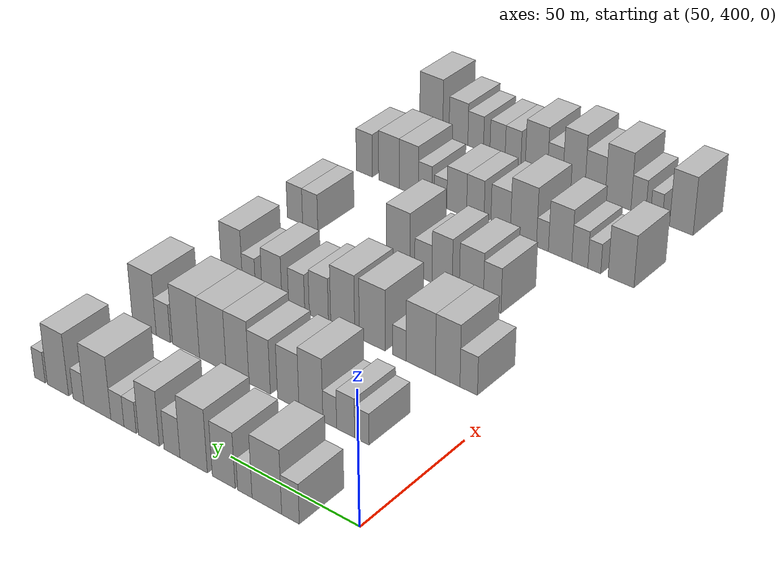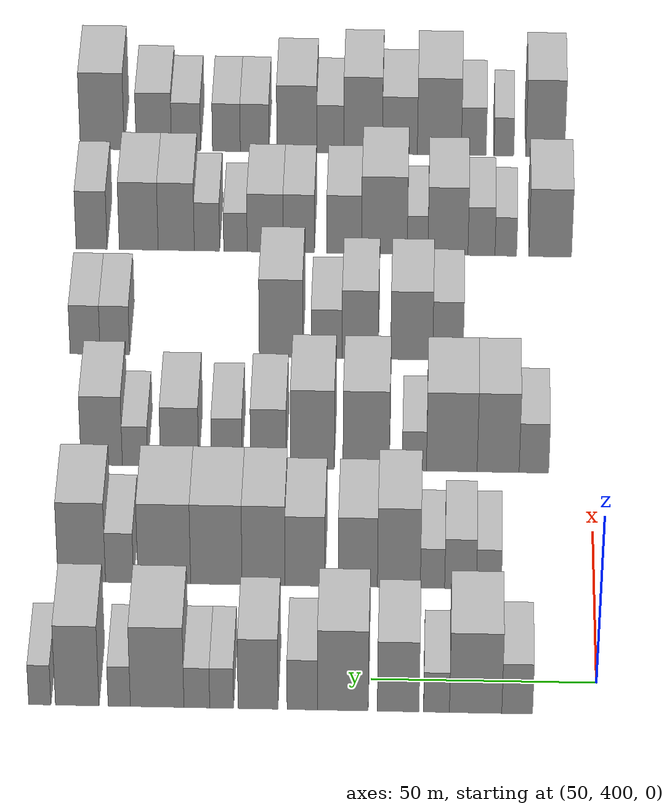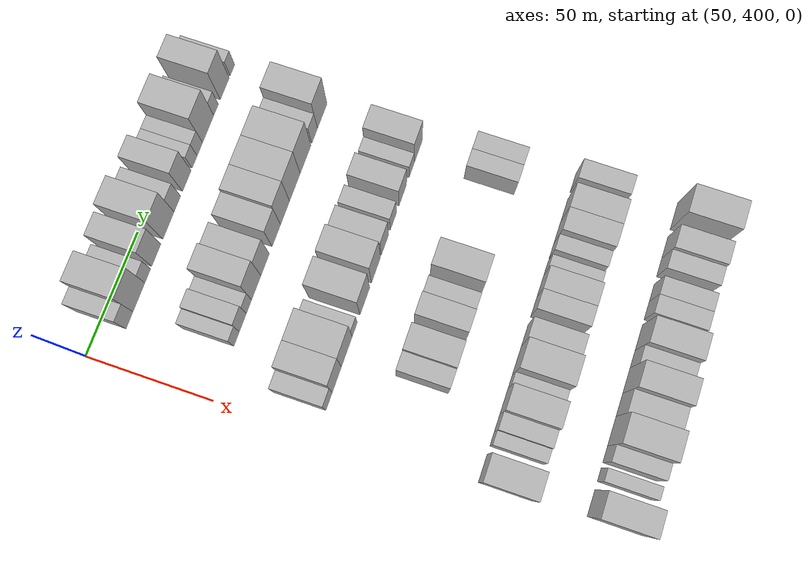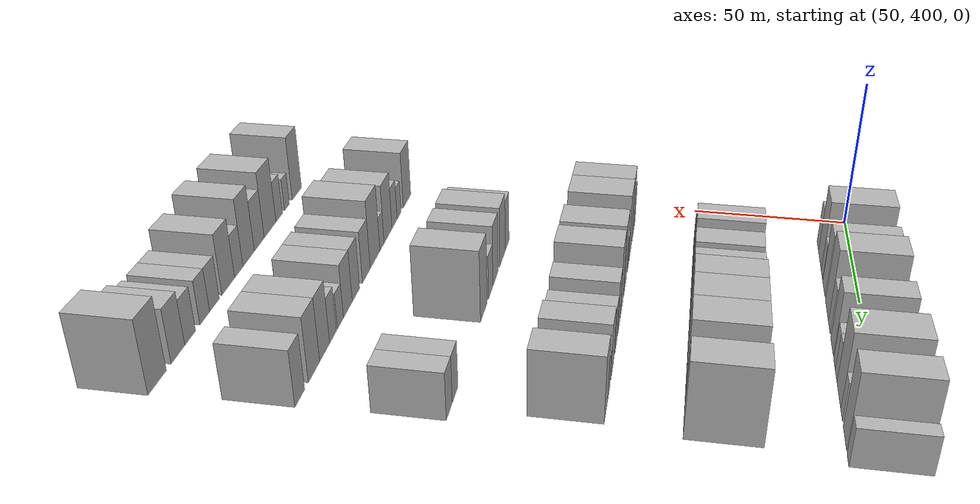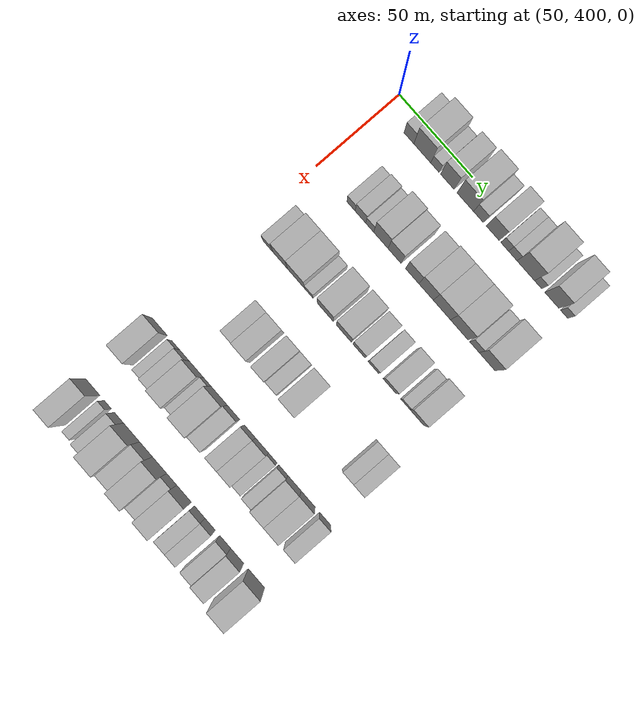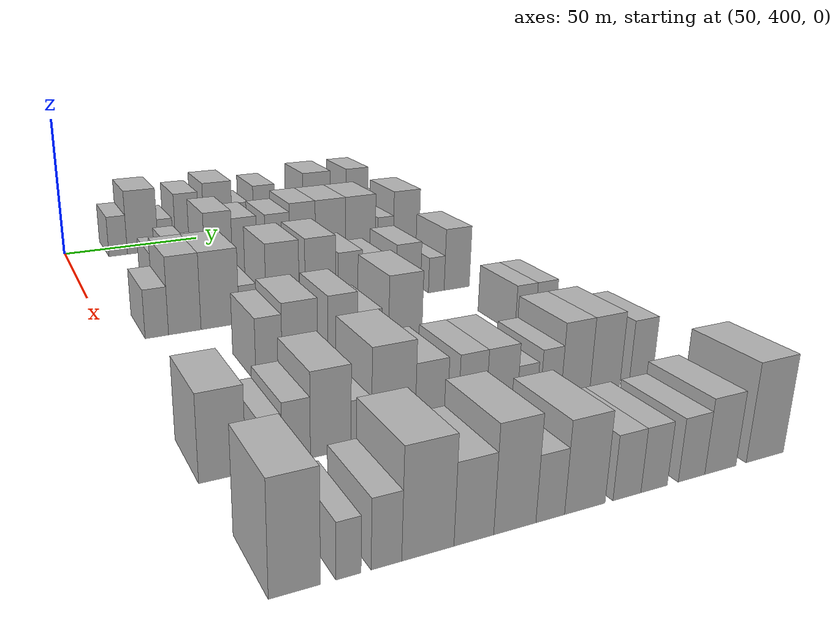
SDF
<sdf version="1.6">
 <world name="default">
  <model name="building_114">
   <static>1</static>
   <pose>50.0000 417.7135 0 0.000000 0.000000 0.000000</pose>
   <link name="link">
    <pose>0 0 7.50 0 0 0</pose>
    <collision name="collision"><geometry><box><size>20.0000 6.7603 15.0000</size></box></geometry></collision>
    <visual name="visual">
     <cast_shadows>0</cast_shadows>
     <geometry><box><size>20.0000 6.7603 15.0000</size></box></geometry>
     <material>
      <script>
       <uri>model://HANNAS_wall/materials/scripts</uri>
       <uri>model://HANNAS_wall/materials/textures</uri>
       <name>vrc/HANNAS_wall</name>
      </script>
     </material>
    </visual>
   </link>
  </model>
  <model name="building_115">
   <static>1</static>
   <pose>50.0000 426.8640 0 0.000000 0.000000 0.000000</pose>
   <link name="link">
    <pose>0 0 12.00 0 0 0</pose>
    <collision name="collision"><geometry><box><size>20.0000 11.5406 24.0000</size></box></geometry></collision>
    <visual name="visual">
     <cast_shadows>0</cast_shadows>
     <geometry><box><size>20.0000 11.5406 24.0000</size></box></geometry>
     <material>
      <script>
       <uri>model://HANNAS_wall/materials/scripts</uri>
       <uri>model://HANNAS_wall/materials/textures</uri>
       <name>vrc/HANNAS_wall</name>
      </script>
     </material>
    </visual>
   </link>
  </model>
  <model name="building_116">
   <static>1</static>
   <pose>50.0000 435.4790 0 0.000000 0.000000 0.000000</pose>
   <link name="link">
    <pose>0 0 6.00 0 0 0</pose>
    <collision name="collision"><geometry><box><size>20.0000 5.6896 12.0000</size></box></geometry></collision>
    <visual name="visual">
     <cast_shadows>0</cast_shadows>
     <geometry><box><size>20.0000 5.6896 12.0000</size></box></geometry>
     <material>
      <script>
       <uri>model://HANNAS_wall/materials/scripts</uri>
       <uri>model://HANNAS_wall/materials/textures</uri>
       <name>vrc/HANNAS_wall</name>
      </script>
     </material>
    </visual>
   </link>
  </model>
  <model name="building_117">
   <static>1</static>
   <pose>50.0000 443.9111 0 0.000000 0.000000 0.000000</pose>
   <link name="link">
    <pose>0 0 10.50 0 0 0</pose>
    <collision name="collision"><geometry><box><size>20.0000 9.1746 21.0000</size></box></geometry></collision>
    <visual name="visual">
     <cast_shadows>0</cast_shadows>
     <geometry><box><size>20.0000 9.1746 21.0000</size></box></geometry>
     <material>
      <script>
       <uri>model://HANNAS_wall/materials/scripts</uri>
       <uri>model://HANNAS_wall/materials/textures</uri>
       <name>vrc/HANNAS_wall</name>
      </script>
     </material>
    </visual>
   </link>
  </model>
  <model name="building_118">
   <static>1</static>
   <pose>50.0000 456.1201 0 0.000000 0.000000 0.000000</pose>
   <link name="link">
    <pose>0 0 12.00 0 0 0</pose>
    <collision name="collision"><geometry><box><size>20.0000 11.2432 24.0000</size></box></geometry></collision>
    <visual name="visual">
     <cast_shadows>0</cast_shadows>
     <geometry><box><size>20.0000 11.2432 24.0000</size></box></geometry>
     <material>
      <script>
       <uri>model://HANNAS_wall/materials/scripts</uri>
       <uri>model://HANNAS_wall/materials/textures</uri>
       <name>vrc/HANNAS_wall</name>
      </script>
     </material>
    </visual>
   </link>
  </model>
  <model name="building_119">
   <static>1</static>
   <pose>50.0000 465.0664 0 0.000000 0.000000 0.000000</pose>
   <link name="link">
    <pose>0 0 7.50 0 0 0</pose>
    <collision name="collision"><geometry><box><size>20.0000 6.6495 15.0000</size></box></geometry></collision>
    <visual name="visual">
     <cast_shadows>0</cast_shadows>
     <geometry><box><size>20.0000 6.6495 15.0000</size></box></geometry>
     <material>
      <script>
       <uri>model://HANNAS_wall/materials/scripts</uri>
       <uri>model://HANNAS_wall/materials/textures</uri>
       <name>vrc/HANNAS_wall</name>
      </script>
     </material>
    </visual>
   </link>
  </model>
  <model name="building_120">
   <static>1</static>
   <pose>50.0000 474.7850 0 0.000000 0.000000 0.000000</pose>
   <link name="link">
    <pose>0 0 10.50 0 0 0</pose>
    <collision name="collision"><geometry><box><size>20.0000 8.7877 21.0000</size></box></geometry></collision>
    <visual name="visual">
     <cast_shadows>0</cast_shadows>
     <geometry><box><size>20.0000 8.7877 21.0000</size></box></geometry>
     <material>
      <script>
       <uri>model://HANNAS_wall/materials/scripts</uri>
       <uri>model://HANNAS_wall/materials/textures</uri>
       <name>vrc/HANNAS_wall</name>
      </script>
     </material>
    </visual>
   </link>
  </model>
  <model name="building_121">
   <static>1</static>
   <pose>50.0000 482.8128 0 0.000000 0.000000 0.000000</pose>
   <link name="link">
    <pose>0 0 6.00 0 0 0</pose>
    <collision name="collision"><geometry><box><size>20.0000 5.2678 12.0000</size></box></geometry></collision>
    <visual name="visual">
     <cast_shadows>0</cast_shadows>
     <geometry><box><size>20.0000 5.2678 12.0000</size></box></geometry>
     <material>
      <script>
       <uri>model://HANNAS_wall/materials/scripts</uri>
       <uri>model://HANNAS_wall/materials/textures</uri>
       <name>vrc/HANNAS_wall</name>
      </script>
     </material>
    </visual>
   </link>
  </model>
  <model name="building_122">
   <static>1</static>
   <pose>50.0000 488.2853 0 0.000000 0.000000 0.000000</pose>
   <link name="link">
    <pose>0 0 6.00 0 0 0</pose>
    <collision name="collision"><geometry><box><size>20.0000 5.6773 12.0000</size></box></geometry></collision>
    <visual name="visual">
     <cast_shadows>0</cast_shadows>
     <geometry><box><size>20.0000 5.6773 12.0000</size></box></geometry>
     <material>
      <script>
       <uri>model://HANNAS_wall/materials/scripts</uri>
       <uri>model://HANNAS_wall/materials/textures</uri>
       <name>vrc/HANNAS_wall</name>
      </script>
     </material>
    </visual>
   </link>
  </model>
  <model name="building_123">
   <static>1</static>
   <pose>50.0000 497.0310 0 0.000000 0.000000 0.000000</pose>
   <link name="link">
    <pose>0 0 12.00 0 0 0</pose>
    <collision name="collision"><geometry><box><size>20.0000 11.8140 24.0000</size></box></geometry></collision>
    <visual name="visual">
     <cast_shadows>0</cast_shadows>
     <geometry><box><size>20.0000 11.8140 24.0000</size></box></geometry>
     <material>
      <script>
       <uri>model://HANNAS_wall/materials/scripts</uri>
       <uri>model://HANNAS_wall/materials/textures</uri>
       <name>vrc/HANNAS_wall</name>
      </script>
     </material>
    </visual>
   </link>
  </model>
  <model name="building_124">
   <static>1</static>
   <pose>50.0000 505.3990 0 0.000000 0.000000 0.000000</pose>
   <link name="link">
    <pose>0 0 6.00 0 0 0</pose>
    <collision name="collision"><geometry><box><size>20.0000 4.9220 12.0000</size></box></geometry></collision>
    <visual name="visual">
     <cast_shadows>0</cast_shadows>
     <geometry><box><size>20.0000 4.9220 12.0000</size></box></geometry>
     <material>
      <script>
       <uri>model://HANNAS_wall/materials/scripts</uri>
       <uri>model://HANNAS_wall/materials/textures</uri>
       <name>vrc/HANNAS_wall</name>
      </script>
     </material>
    </visual>
   </link>
  </model>
  <model name="building_125">
   <static>1</static>
   <pose>50.0000 514.6741 0 0.000000 0.000000 0.000000</pose>
   <link name="link">
    <pose>0 0 12.00 0 0 0</pose>
    <collision name="collision"><geometry><box><size>20.0000 9.6282 24.0000</size></box></geometry></collision>
    <visual name="visual">
     <cast_shadows>0</cast_shadows>
     <geometry><box><size>20.0000 9.6282 24.0000</size></box></geometry>
     <material>
      <script>
       <uri>model://HANNAS_wall/materials/scripts</uri>
       <uri>model://HANNAS_wall/materials/textures</uri>
       <name>vrc/HANNAS_wall</name>
      </script>
     </material>
    </visual>
   </link>
  </model>
  <model name="building_126">
   <static>1</static>
   <pose>50.0000 522.9411 0 0.000000 0.000000 0.000000</pose>
   <link name="link">
    <pose>0 0 6.00 0 0 0</pose>
    <collision name="collision"><geometry><box><size>20.0000 4.9058 12.0000</size></box></geometry></collision>
    <visual name="visual">
     <cast_shadows>0</cast_shadows>
     <geometry><box><size>20.0000 4.9058 12.0000</size></box></geometry>
     <material>
      <script>
       <uri>model://HANNAS_wall/materials/scripts</uri>
       <uri>model://HANNAS_wall/materials/textures</uri>
       <name>vrc/HANNAS_wall</name>
      </script>
     </material>
    </visual>
   </link>
  </model>
  <model name="building_257">
   <static>1</static>
   <pose>90.0000 423.9571 0 0.000000 0.000000 0.000000</pose>
   <link name="link">
    <pose>0 0 6.00 0 0 0</pose>
    <collision name="collision"><geometry><box><size>20.0000 5.6588 12.0000</size></box></geometry></collision>
    <visual name="visual">
     <cast_shadows>0</cast_shadows>
     <geometry><box><size>20.0000 5.6588 12.0000</size></box></geometry>
     <material>
      <script>
       <uri>model://HANNAS_wall/materials/scripts</uri>
       <uri>model://HANNAS_wall/materials/textures</uri>
       <name>vrc/HANNAS_wall</name>
      </script>
     </material>
    </visual>
   </link>
  </model>
  <model name="building_258">
   <static>1</static>
   <pose>90.0000 430.3698 0 0.000000 0.000000 0.000000</pose>
   <link name="link">
    <pose>0 0 7.50 0 0 0</pose>
    <collision name="collision"><geometry><box><size>20.0000 7.1664 15.0000</size></box></geometry></collision>
    <visual name="visual">
     <cast_shadows>0</cast_shadows>
     <geometry><box><size>20.0000 7.1664 15.0000</size></box></geometry>
     <material>
      <script>
       <uri>model://HANNAS_wall/materials/scripts</uri>
       <uri>model://HANNAS_wall/materials/textures</uri>
       <name>vrc/HANNAS_wall</name>
      </script>
     </material>
    </visual>
   </link>
  </model>
  <model name="building_259">
   <static>1</static>
   <pose>90.0000 436.7030 0 0.000000 0.000000 0.000000</pose>
   <link name="link">
    <pose>0 0 6.00 0 0 0</pose>
    <collision name="collision"><geometry><box><size>20.0000 5.4999 12.0000</size></box></geometry></collision>
    <visual name="visual">
     <cast_shadows>0</cast_shadows>
     <geometry><box><size>20.0000 5.4999 12.0000</size></box></geometry>
     <material>
      <script>
       <uri>model://HANNAS_wall/materials/scripts</uri>
       <uri>model://HANNAS_wall/materials/textures</uri>
       <name>vrc/HANNAS_wall</name>
      </script>
     </material>
    </visual>
   </link>
  </model>
  <model name="building_260">
   <static>1</static>
   <pose>90.0000 444.3095 0 0.000000 0.000000 0.000000</pose>
   <link name="link">
    <pose>0 0 12.00 0 0 0</pose>
    <collision name="collision"><geometry><box><size>20.0000 9.7132 24.0000</size></box></geometry></collision>
    <visual name="visual">
     <cast_shadows>0</cast_shadows>
     <geometry><box><size>20.0000 9.7132 24.0000</size></box></geometry>
     <material>
      <script>
       <uri>model://HANNAS_wall/materials/scripts</uri>
       <uri>model://HANNAS_wall/materials/textures</uri>
       <name>vrc/HANNAS_wall</name>
      </script>
     </material>
    </visual>
   </link>
  </model>
  <model name="building_261">
   <static>1</static>
   <pose>90.0000 453.6088 0 0.000000 0.000000 0.000000</pose>
   <link name="link">
    <pose>0 0 10.50 0 0 0</pose>
    <collision name="collision"><geometry><box><size>20.0000 8.8853 21.0000</size></box></geometry></collision>
    <visual name="visual">
     <cast_shadows>0</cast_shadows>
     <geometry><box><size>20.0000 8.8853 21.0000</size></box></geometry>
     <material>
      <script>
       <uri>model://HANNAS_wall/materials/scripts</uri>
       <uri>model://HANNAS_wall/materials/textures</uri>
       <name>vrc/HANNAS_wall</name>
      </script>
     </material>
    </visual>
   </link>
  </model>
  <model name="building_262">
   <static>1</static>
   <pose>90.0000 465.5689 0 0.000000 0.000000 0.000000</pose>
   <link name="link">
    <pose>0 0 10.50 0 0 0</pose>
    <collision name="collision"><geometry><box><size>20.0000 9.0350 21.0000</size></box></geometry></collision>
    <visual name="visual">
     <cast_shadows>0</cast_shadows>
     <geometry><box><size>20.0000 9.0350 21.0000</size></box></geometry>
     <material>
      <script>
       <uri>model://HANNAS_wall/materials/scripts</uri>
       <uri>model://HANNAS_wall/materials/textures</uri>
       <name>vrc/HANNAS_wall</name>
      </script>
     </material>
    </visual>
   </link>
  </model>
  <model name="building_263">
   <static>1</static>
   <pose>90.0000 474.9672 0 0.000000 0.000000 0.000000</pose>
   <link name="link">
    <pose>0 0 12.00 0 0 0</pose>
    <collision name="collision"><geometry><box><size>20.0000 9.7615 24.0000</size></box></geometry></collision>
    <visual name="visual">
     <cast_shadows>0</cast_shadows>
     <geometry><box><size>20.0000 9.7615 24.0000</size></box></geometry>
     <material>
      <script>
       <uri>model://HANNAS_wall/materials/scripts</uri>
       <uri>model://HANNAS_wall/materials/textures</uri>
       <name>vrc/HANNAS_wall</name>
      </script>
     </material>
    </visual>
   </link>
  </model>
  <model name="building_264">
   <static>1</static>
   <pose>90.0000 485.6775 0 0.000000 0.000000 0.000000</pose>
   <link name="link">
    <pose>0 0 12.00 0 0 0</pose>
    <collision name="collision"><geometry><box><size>20.0000 11.6590 24.0000</size></box></geometry></collision>
    <visual name="visual">
     <cast_shadows>0</cast_shadows>
     <geometry><box><size>20.0000 11.6590 24.0000</size></box></geometry>
     <material>
      <script>
       <uri>model://HANNAS_wall/materials/scripts</uri>
       <uri>model://HANNAS_wall/materials/textures</uri>
       <name>vrc/HANNAS_wall</name>
      </script>
     </material>
    </visual>
   </link>
  </model>
  <model name="building_265">
   <static>1</static>
   <pose>90.0000 497.4861 0 0.000000 0.000000 0.000000</pose>
   <link name="link">
    <pose>0 0 12.00 0 0 0</pose>
    <collision name="collision"><geometry><box><size>20.0000 11.9582 24.0000</size></box></geometry></collision>
    <visual name="visual">
     <cast_shadows>0</cast_shadows>
     <geometry><box><size>20.0000 11.9582 24.0000</size></box></geometry>
     <material>
      <script>
       <uri>model://HANNAS_wall/materials/scripts</uri>
       <uri>model://HANNAS_wall/materials/textures</uri>
       <name>vrc/HANNAS_wall</name>
      </script>
     </material>
    </visual>
   </link>
  </model>
  <model name="building_266">
   <static>1</static>
   <pose>90.0000 507.6511 0 0.000000 0.000000 0.000000</pose>
   <link name="link">
    <pose>0 0 7.50 0 0 0</pose>
    <collision name="collision"><geometry><box><size>20.0000 6.3718 15.0000</size></box></geometry></collision>
    <visual name="visual">
     <cast_shadows>0</cast_shadows>
     <geometry><box><size>20.0000 6.3718 15.0000</size></box></geometry>
     <material>
      <script>
       <uri>model://HANNAS_wall/materials/scripts</uri>
       <uri>model://HANNAS_wall/materials/textures</uri>
       <name>vrc/HANNAS_wall</name>
      </script>
     </material>
    </visual>
   </link>
  </model>
  <model name="building_267">
   <static>1</static>
   <pose>90.0000 516.2287 0 0.000000 0.000000 0.000000</pose>
   <link name="link">
    <pose>0 0 12.00 0 0 0</pose>
    <collision name="collision"><geometry><box><size>20.0000 10.7834 24.0000</size></box></geometry></collision>
    <visual name="visual">
     <cast_shadows>0</cast_shadows>
     <geometry><box><size>20.0000 10.7834 24.0000</size></box></geometry>
     <material>
      <script>
       <uri>model://HANNAS_wall/materials/scripts</uri>
       <uri>model://HANNAS_wall/materials/textures</uri>
       <name>vrc/HANNAS_wall</name>
      </script>
     </material>
    </visual>
   </link>
  </model>
  <model name="building_393">
   <static>1</static>
   <pose>130.0000 413.4483 0 0.000000 0.000000 0.000000</pose>
   <link name="link">
    <pose>0 0 7.50 0 0 0</pose>
    <collision name="collision"><geometry><box><size>20.0000 6.8736 15.0000</size></box></geometry></collision>
    <visual name="visual">
     <cast_shadows>0</cast_shadows>
     <geometry><box><size>20.0000 6.8736 15.0000</size></box></geometry>
     <material>
      <script>
       <uri>model://HANNAS_wall/materials/scripts</uri>
       <uri>model://HANNAS_wall/materials/textures</uri>
       <name>vrc/HANNAS_wall</name>
      </script>
     </material>
    </visual>
   </link>
  </model>
  <model name="building_394">
   <static>1</static>
   <pose>130.0000 421.7692 0 0.000000 0.000000 0.000000</pose>
   <link name="link">
    <pose>0 0 12.00 0 0 0</pose>
    <collision name="collision"><geometry><box><size>20.0000 9.7682 24.0000</size></box></geometry></collision>
    <visual name="visual">
     <cast_shadows>0</cast_shadows>
     <geometry><box><size>20.0000 9.7682 24.0000</size></box></geometry>
     <material>
      <script>
       <uri>model://HANNAS_wall/materials/scripts</uri>
       <uri>model://HANNAS_wall/materials/textures</uri>
       <name>vrc/HANNAS_wall</name>
      </script>
     </material>
    </visual>
   </link>
  </model>
  <model name="building_395">
   <static>1</static>
   <pose>130.0000 432.5534 0 0.000000 0.000000 0.000000</pose>
   <link name="link">
    <pose>0 0 12.00 0 0 0</pose>
    <collision name="collision"><geometry><box><size>20.0000 11.8002 24.0000</size></box></geometry></collision>
    <visual name="visual">
     <cast_shadows>0</cast_shadows>
     <geometry><box><size>20.0000 11.8002 24.0000</size></box></geometry>
     <material>
      <script>
       <uri>model://HANNAS_wall/materials/scripts</uri>
       <uri>model://HANNAS_wall/materials/textures</uri>
       <name>vrc/HANNAS_wall</name>
      </script>
     </material>
    </visual>
   </link>
  </model>
  <model name="building_396">
   <static>1</static>
   <pose>130.0000 441.2724 0 0.000000 0.000000 0.000000</pose>
   <link name="link">
    <pose>0 0 6.00 0 0 0</pose>
    <collision name="collision"><geometry><box><size>20.0000 5.6378 12.0000</size></box></geometry></collision>
    <visual name="visual">
     <cast_shadows>0</cast_shadows>
     <geometry><box><size>20.0000 5.6378 12.0000</size></box></geometry>
     <material>
      <script>
       <uri>model://HANNAS_wall/materials/scripts</uri>
       <uri>model://HANNAS_wall/materials/textures</uri>
       <name>vrc/HANNAS_wall</name>
      </script>
     </material>
    </visual>
   </link>
  </model>
  <model name="building_397">
   <static>1</static>
   <pose>130.0000 452.4898 0 0.000000 0.000000 0.000000</pose>
   <link name="link">
    <pose>0 0 12.00 0 0 0</pose>
    <collision name="collision"><geometry><box><size>20.0000 10.7970 24.0000</size></box></geometry></collision>
    <visual name="visual">
     <cast_shadows>0</cast_shadows>
     <geometry><box><size>20.0000 10.7970 24.0000</size></box></geometry>
     <material>
      <script>
       <uri>model://HANNAS_wall/materials/scripts</uri>
       <uri>model://HANNAS_wall/materials/textures</uri>
       <name>vrc/HANNAS_wall</name>
      </script>
     </material>
    </visual>
   </link>
  </model>
  <model name="building_398">
   <static>1</static>
   <pose>130.0000 464.9932 0 0.000000 0.000000 0.000000</pose>
   <link name="link">
    <pose>0 0 12.00 0 0 0</pose>
    <collision name="collision"><geometry><box><size>20.0000 10.2098 24.0000</size></box></geometry></collision>
    <visual name="visual">
     <cast_shadows>0</cast_shadows>
     <geometry><box><size>20.0000 10.2098 24.0000</size></box></geometry>
     <material>
      <script>
       <uri>model://HANNAS_wall/materials/scripts</uri>
       <uri>model://HANNAS_wall/materials/textures</uri>
       <name>vrc/HANNAS_wall</name>
      </script>
     </material>
    </visual>
   </link>
  </model>
  <model name="building_399">
   <static>1</static>
   <pose>130.0000 475.2476 0 0.000000 0.000000 0.000000</pose>
   <link name="link">
    <pose>0 0 9.00 0 0 0</pose>
    <collision name="collision"><geometry><box><size>20.0000 8.2990 18.0000</size></box></geometry></collision>
    <visual name="visual">
     <cast_shadows>0</cast_shadows>
     <geometry><box><size>20.0000 8.2990 18.0000</size></box></geometry>
     <material>
      <script>
       <uri>model://HANNAS_wall/materials/scripts</uri>
       <uri>model://HANNAS_wall/materials/textures</uri>
       <name>vrc/HANNAS_wall</name>
      </script>
     </material>
    </visual>
   </link>
  </model>
  <model name="building_400">
   <static>1</static>
   <pose>130.0000 484.9527 0 0.000000 0.000000 0.000000</pose>
   <link name="link">
    <pose>0 0 7.50 0 0 0</pose>
    <collision name="collision"><geometry><box><size>20.0000 7.1112 15.0000</size></box></geometry></collision>
    <visual name="visual">
     <cast_shadows>0</cast_shadows>
     <geometry><box><size>20.0000 7.1112 15.0000</size></box></geometry>
     <material>
      <script>
       <uri>model://HANNAS_wall/materials/scripts</uri>
       <uri>model://HANNAS_wall/materials/textures</uri>
       <name>vrc/HANNAS_wall</name>
      </script>
     </material>
    </visual>
   </link>
  </model>
  <model name="building_401">
   <static>1</static>
   <pose>130.0000 495.9588 0 0.000000 0.000000 0.000000</pose>
   <link name="link">
    <pose>0 0 9.00 0 0 0</pose>
    <collision name="collision"><geometry><box><size>20.0000 8.9010 18.0000</size></box></geometry></collision>
    <visual name="visual">
     <cast_shadows>0</cast_shadows>
     <geometry><box><size>20.0000 8.9010 18.0000</size></box></geometry>
     <material>
      <script>
       <uri>model://HANNAS_wall/materials/scripts</uri>
       <uri>model://HANNAS_wall/materials/textures</uri>
       <name>vrc/HANNAS_wall</name>
      </script>
     </material>
    </visual>
   </link>
  </model>
  <model name="building_402">
   <static>1</static>
   <pose>130.0000 506.3647 0 0.000000 0.000000 0.000000</pose>
   <link name="link">
    <pose>0 0 6.00 0 0 0</pose>
    <collision name="collision"><geometry><box><size>20.0000 5.9106 12.0000</size></box></geometry></collision>
    <visual name="visual">
     <cast_shadows>0</cast_shadows>
     <geometry><box><size>20.0000 5.9106 12.0000</size></box></geometry>
     <material>
      <script>
       <uri>model://HANNAS_wall/materials/scripts</uri>
       <uri>model://HANNAS_wall/materials/textures</uri>
       <name>vrc/HANNAS_wall</name>
      </script>
     </material>
    </visual>
   </link>
  </model>
  <model name="building_403">
   <static>1</static>
   <pose>130.0000 514.1449 0 0.000000 0.000000 0.000000</pose>
   <link name="link">
    <pose>0 0 10.50 0 0 0</pose>
    <collision name="collision"><geometry><box><size>20.0000 9.6498 21.0000</size></box></geometry></collision>
    <visual name="visual">
     <cast_shadows>0</cast_shadows>
     <geometry><box><size>20.0000 9.6498 21.0000</size></box></geometry>
     <material>
      <script>
       <uri>model://HANNAS_wall/materials/scripts</uri>
       <uri>model://HANNAS_wall/materials/textures</uri>
       <name>vrc/HANNAS_wall</name>
      </script>
     </material>
    </visual>
   </link>
  </model>
  <model name="building_526">
   <static>1</static>
   <pose>170.0000 433.7260 0 0.000000 0.000000 0.000000</pose>
   <link name="link">
    <pose>0 0 9.00 0 0 0</pose>
    <collision name="collision"><geometry><box><size>20.0000 7.2751 18.0000</size></box></geometry></collision>
    <visual name="visual">
     <cast_shadows>0</cast_shadows>
     <geometry><box><size>20.0000 7.2751 18.0000</size></box></geometry>
     <material>
      <script>
       <uri>model://HANNAS_wall/materials/scripts</uri>
       <uri>model://HANNAS_wall/materials/textures</uri>
       <name>vrc/HANNAS_wall</name>
      </script>
     </material>
    </visual>
   </link>
  </model>
  <model name="building_527">
   <static>1</static>
   <pose>170.0000 442.3757 0 0.000000 0.000000 0.000000</pose>
   <link name="link">
    <pose>0 0 10.50 0 0 0</pose>
    <collision name="collision"><geometry><box><size>20.0000 10.0244 21.0000</size></box></geometry></collision>
    <visual name="visual">
     <cast_shadows>0</cast_shadows>
     <geometry><box><size>20.0000 10.0244 21.0000</size></box></geometry>
     <material>
      <script>
       <uri>model://HANNAS_wall/materials/scripts</uri>
       <uri>model://HANNAS_wall/materials/textures</uri>
       <name>vrc/HANNAS_wall</name>
      </script>
     </material>
    </visual>
   </link>
  </model>
  <model name="building_528">
   <static>1</static>
   <pose>170.0000 454.7023 0 0.000000 0.000000 0.000000</pose>
   <link name="link">
    <pose>0 0 10.50 0 0 0</pose>
    <collision name="collision"><geometry><box><size>20.0000 8.6288 21.0000</size></box></geometry></collision>
    <visual name="visual">
     <cast_shadows>0</cast_shadows>
     <geometry><box><size>20.0000 8.6288 21.0000</size></box></geometry>
     <material>
      <script>
       <uri>model://HANNAS_wall/materials/scripts</uri>
       <uri>model://HANNAS_wall/materials/textures</uri>
       <name>vrc/HANNAS_wall</name>
      </script>
     </material>
    </visual>
   </link>
  </model>
  <model name="building_529">
   <static>1</static>
   <pose>170.0000 462.7207 0 0.000000 0.000000 0.000000</pose>
   <link name="link">
    <pose>0 0 7.50 0 0 0</pose>
    <collision name="collision"><geometry><box><size>20.0000 7.4082 15.0000</size></box></geometry></collision>
    <visual name="visual">
     <cast_shadows>0</cast_shadows>
     <geometry><box><size>20.0000 7.4082 15.0000</size></box></geometry>
     <material>
      <script>
       <uri>model://HANNAS_wall/materials/scripts</uri>
       <uri>model://HANNAS_wall/materials/textures</uri>
       <name>vrc/HANNAS_wall</name>
      </script>
     </material>
    </visual>
   </link>
  </model>
  <model name="building_530">
   <static>1</static>
   <pose>170.0000 473.6191 0 0.000000 0.000000 0.000000</pose>
   <link name="link">
    <pose>0 0 12.00 0 0 0</pose>
    <collision name="collision"><geometry><box><size>20.0000 10.3885 24.0000</size></box></geometry></collision>
    <visual name="visual">
     <cast_shadows>0</cast_shadows>
     <geometry><box><size>20.0000 10.3885 24.0000</size></box></geometry>
     <material>
      <script>
       <uri>model://HANNAS_wall/materials/scripts</uri>
       <uri>model://HANNAS_wall/materials/textures</uri>
       <name>vrc/HANNAS_wall</name>
      </script>
     </material>
    </visual>
   </link>
  </model>
  <model name="building_531">
   <static>1</static>
   <pose>170.0000 513.4290 0 0.000000 0.000000 0.000000</pose>
   <link name="link">
    <pose>0 0 7.50 0 0 0</pose>
    <collision name="collision"><geometry><box><size>20.0000 7.0771 15.0000</size></box></geometry></collision>
    <visual name="visual">
     <cast_shadows>0</cast_shadows>
     <geometry><box><size>20.0000 7.0771 15.0000</size></box></geometry>
     <material>
      <script>
       <uri>model://HANNAS_wall/materials/scripts</uri>
       <uri>model://HANNAS_wall/materials/textures</uri>
       <name>vrc/HANNAS_wall</name>
      </script>
     </material>
    </visual>
   </link>
  </model>
  <model name="building_532">
   <static>1</static>
   <pose>170.0000 520.5660 0 0.000000 0.000000 0.000000</pose>
   <link name="link">
    <pose>0 0 7.50 0 0 0</pose>
    <collision name="collision"><geometry><box><size>20.0000 7.1968 15.0000</size></box></geometry></collision>
    <visual name="visual">
     <cast_shadows>0</cast_shadows>
     <geometry><box><size>20.0000 7.1968 15.0000</size></box></geometry>
     <material>
      <script>
       <uri>model://HANNAS_wall/materials/scripts</uri>
       <uri>model://HANNAS_wall/materials/textures</uri>
       <name>vrc/HANNAS_wall</name>
      </script>
     </material>
    </visual>
   </link>
  </model>
  <model name="building_665">
   <static>1</static>
   <pose>210.0000 408.8674 0 0.000000 0.000000 0.000000</pose>
   <link name="link">
    <pose>0 0 10.50 0 0 0</pose>
    <collision name="collision"><geometry><box><size>20.0000 10.4492 21.0000</size></box></geometry></collision>
    <visual name="visual">
     <cast_shadows>0</cast_shadows>
     <geometry><box><size>20.0000 10.4492 21.0000</size></box></geometry>
     <material>
      <script>
       <uri>model://HANNAS_wall/materials/scripts</uri>
       <uri>model://HANNAS_wall/materials/textures</uri>
       <name>vrc/HANNAS_wall</name>
      </script>
     </material>
    </visual>
   </link>
  </model>
  <model name="building_666">
   <static>1</static>
   <pose>210.0000 419.7422 0 0.000000 0.000000 0.000000</pose>
   <link name="link">
    <pose>0 0 6.00 0 0 0</pose>
    <collision name="collision"><geometry><box><size>20.0000 5.3004 12.0000</size></box></geometry></collision>
    <visual name="visual">
     <cast_shadows>0</cast_shadows>
     <geometry><box><size>20.0000 5.3004 12.0000</size></box></geometry>
     <material>
      <script>
       <uri>model://HANNAS_wall/materials/scripts</uri>
       <uri>model://HANNAS_wall/materials/textures</uri>
       <name>vrc/HANNAS_wall</name>
      </script>
     </material>
    </visual>
   </link>
  </model>
  <model name="building_667">
   <static>1</static>
   <pose>210.0000 425.7132 0 0.000000 0.000000 0.000000</pose>
   <link name="link">
    <pose>0 0 7.50 0 0 0</pose>
    <collision name="collision"><geometry><box><size>20.0000 6.6416 15.0000</size></box></geometry></collision>
    <visual name="visual">
     <cast_shadows>0</cast_shadows>
     <geometry><box><size>20.0000 6.6416 15.0000</size></box></geometry>
     <material>
      <script>
       <uri>model://HANNAS_wall/materials/scripts</uri>
       <uri>model://HANNAS_wall/materials/textures</uri>
       <name>vrc/HANNAS_wall</name>
      </script>
     </material>
    </visual>
   </link>
  </model>
  <model name="building_668">
   <static>1</static>
   <pose>210.0000 433.9491 0 0.000000 0.000000 0.000000</pose>
   <link name="link">
    <pose>0 0 10.50 0 0 0</pose>
    <collision name="collision"><geometry><box><size>20.0000 9.8303 21.0000</size></box></geometry></collision>
    <visual name="visual">
     <cast_shadows>0</cast_shadows>
     <geometry><box><size>20.0000 9.8303 21.0000</size></box></geometry>
     <material>
      <script>
       <uri>model://HANNAS_wall/materials/scripts</uri>
       <uri>model://HANNAS_wall/materials/textures</uri>
       <name>vrc/HANNAS_wall</name>
      </script>
     </material>
    </visual>
   </link>
  </model>
  <model name="building_669">
   <static>1</static>
   <pose>210.0000 441.3977 0 0.000000 0.000000 0.000000</pose>
   <link name="link">
    <pose>0 0 6.00 0 0 0</pose>
    <collision name="collision"><geometry><box><size>20.0000 5.0668 12.0000</size></box></geometry></collision>
    <visual name="visual">
     <cast_shadows>0</cast_shadows>
     <geometry><box><size>20.0000 5.0668 12.0000</size></box></geometry>
     <material>
      <script>
       <uri>model://HANNAS_wall/materials/scripts</uri>
       <uri>model://HANNAS_wall/materials/textures</uri>
       <name>vrc/HANNAS_wall</name>
      </script>
     </material>
    </visual>
   </link>
  </model>
  <model name="building_670">
   <static>1</static>
   <pose>210.0000 449.5314 0 0.000000 0.000000 0.000000</pose>
   <link name="link">
    <pose>0 0 12.00 0 0 0</pose>
    <collision name="collision"><geometry><box><size>20.0000 11.2007 24.0000</size></box></geometry></collision>
    <visual name="visual">
     <cast_shadows>0</cast_shadows>
     <geometry><box><size>20.0000 11.2007 24.0000</size></box></geometry>
     <material>
      <script>
       <uri>model://HANNAS_wall/materials/scripts</uri>
       <uri>model://HANNAS_wall/materials/textures</uri>
       <name>vrc/HANNAS_wall</name>
      </script>
     </material>
    </visual>
   </link>
  </model>
  <model name="building_671">
   <static>1</static>
   <pose>210.0000 459.4115 0 0.000000 0.000000 0.000000</pose>
   <link name="link">
    <pose>0 0 9.00 0 0 0</pose>
    <collision name="collision"><geometry><box><size>20.0000 8.5596 18.0000</size></box></geometry></collision>
    <visual name="visual">
     <cast_shadows>0</cast_shadows>
     <geometry><box><size>20.0000 8.5596 18.0000</size></box></geometry>
     <material>
      <script>
       <uri>model://HANNAS_wall/materials/scripts</uri>
       <uri>model://HANNAS_wall/materials/textures</uri>
       <name>vrc/HANNAS_wall</name>
      </script>
     </material>
    </visual>
   </link>
  </model>
  <model name="building_672">
   <static>1</static>
   <pose>210.0000 470.5386 0 0.000000 0.000000 0.000000</pose>
   <link name="link">
    <pose>0 0 9.00 0 0 0</pose>
    <collision name="collision"><geometry><box><size>20.0000 7.6945 18.0000</size></box></geometry></collision>
    <visual name="visual">
     <cast_shadows>0</cast_shadows>
     <geometry><box><size>20.0000 7.6945 18.0000</size></box></geometry>
     <material>
      <script>
       <uri>model://HANNAS_wall/materials/scripts</uri>
       <uri>model://HANNAS_wall/materials/textures</uri>
       <name>vrc/HANNAS_wall</name>
      </script>
     </material>
    </visual>
   </link>
  </model>
  <model name="building_673">
   <static>1</static>
   <pose>210.0000 478.8053 0 0.000000 0.000000 0.000000</pose>
   <link name="link">
    <pose>0 0 9.00 0 0 0</pose>
    <collision name="collision"><geometry><box><size>20.0000 8.8390 18.0000</size></box></geometry></collision>
    <visual name="visual">
     <cast_shadows>0</cast_shadows>
     <geometry><box><size>20.0000 8.8390 18.0000</size></box></geometry>
     <material>
      <script>
       <uri>model://HANNAS_wall/materials/scripts</uri>
       <uri>model://HANNAS_wall/materials/textures</uri>
       <name>vrc/HANNAS_wall</name>
      </script>
     </material>
    </visual>
   </link>
  </model>
  <model name="building_674">
   <static>1</static>
   <pose>210.0000 486.1143 0 0.000000 0.000000 0.000000</pose>
   <link name="link">
    <pose>0 0 6.00 0 0 0</pose>
    <collision name="collision"><geometry><box><size>20.0000 5.7790 12.0000</size></box></geometry></collision>
    <visual name="visual">
     <cast_shadows>0</cast_shadows>
     <geometry><box><size>20.0000 5.7790 12.0000</size></box></geometry>
     <material>
      <script>
       <uri>model://HANNAS_wall/materials/scripts</uri>
       <uri>model://HANNAS_wall/materials/textures</uri>
       <name>vrc/HANNAS_wall</name>
      </script>
     </material>
    </visual>
   </link>
  </model>
  <model name="building_675">
   <static>1</static>
   <pose>210.0000 493.1140 0 0.000000 0.000000 0.000000</pose>
   <link name="link">
    <pose>0 0 7.50 0 0 0</pose>
    <collision name="collision"><geometry><box><size>20.0000 6.2205 15.0000</size></box></geometry></collision>
    <visual name="visual">
     <cast_shadows>0</cast_shadows>
     <geometry><box><size>20.0000 6.2205 15.0000</size></box></geometry>
     <material>
      <script>
       <uri>model://HANNAS_wall/materials/scripts</uri>
       <uri>model://HANNAS_wall/materials/textures</uri>
       <name>vrc/HANNAS_wall</name>
      </script>
     </material>
    </visual>
   </link>
  </model>
  <model name="building_676">
   <static>1</static>
   <pose>210.0000 500.6688 0 0.000000 0.000000 0.000000</pose>
   <link name="link">
    <pose>0 0 10.50 0 0 0</pose>
    <collision name="collision"><geometry><box><size>20.0000 8.8891 21.0000</size></box></geometry></collision>
    <visual name="visual">
     <cast_shadows>0</cast_shadows>
     <geometry><box><size>20.0000 8.8891 21.0000</size></box></geometry>
     <material>
      <script>
       <uri>model://HANNAS_wall/materials/scripts</uri>
       <uri>model://HANNAS_wall/materials/textures</uri>
       <name>vrc/HANNAS_wall</name>
      </script>
     </material>
    </visual>
   </link>
  </model>
  <model name="building_677">
   <static>1</static>
   <pose>210.0000 509.8952 0 0.000000 0.000000 0.000000</pose>
   <link name="link">
    <pose>0 0 10.50 0 0 0</pose>
    <collision name="collision"><geometry><box><size>20.0000 9.5636 21.0000</size></box></geometry></collision>
    <visual name="visual">
     <cast_shadows>0</cast_shadows>
     <geometry><box><size>20.0000 9.5636 21.0000</size></box></geometry>
     <material>
      <script>
       <uri>model://HANNAS_wall/materials/scripts</uri>
       <uri>model://HANNAS_wall/materials/textures</uri>
       <name>vrc/HANNAS_wall</name>
      </script>
     </material>
    </visual>
   </link>
  </model>
  <model name="building_678">
   <static>1</static>
   <pose>210.0000 521.4893 0 0.000000 0.000000 0.000000</pose>
   <link name="link">
    <pose>0 0 9.00 0 0 0</pose>
    <collision name="collision"><geometry><box><size>20.0000 7.6246 18.0000</size></box></geometry></collision>
    <visual name="visual">
     <cast_shadows>0</cast_shadows>
     <geometry><box><size>20.0000 7.6246 18.0000</size></box></geometry>
     <material>
      <script>
       <uri>model://HANNAS_wall/materials/scripts</uri>
       <uri>model://HANNAS_wall/materials/textures</uri>
       <name>vrc/HANNAS_wall</name>
      </script>
     </material>
    </visual>
   </link>
  </model>
  <model name="building_802">
   <static>1</static>
   <pose>250.0000 409.7538 0 0.000000 0.000000 0.000000</pose>
   <link name="link">
    <pose>0 0 12.00 0 0 0</pose>
    <collision name="collision"><geometry><box><size>20.0000 9.7626 24.0000</size></box></geometry></collision>
    <visual name="visual">
     <cast_shadows>0</cast_shadows>
     <geometry><box><size>20.0000 9.7626 24.0000</size></box></geometry>
     <material>
      <script>
       <uri>model://HANNAS_wall/materials/scripts</uri>
       <uri>model://HANNAS_wall/materials/textures</uri>
       <name>vrc/HANNAS_wall</name>
      </script>
     </material>
    </visual>
   </link>
  </model>
  <model name="building_803">
   <static>1</static>
   <pose>250.0000 420.1106 0 0.000000 0.000000 0.000000</pose>
   <link name="link">
    <pose>0 0 6.00 0 0 0</pose>
    <collision name="collision"><geometry><box><size>20.0000 4.9509 12.0000</size></box></geometry></collision>
    <visual name="visual">
     <cast_shadows>0</cast_shadows>
     <geometry><box><size>20.0000 4.9509 12.0000</size></box></geometry>
     <material>
      <script>
       <uri>model://HANNAS_wall/materials/scripts</uri>
       <uri>model://HANNAS_wall/materials/textures</uri>
       <name>vrc/HANNAS_wall</name>
      </script>
     </material>
    </visual>
   </link>
  </model>
  <model name="building_804">
   <static>1</static>
   <pose>250.0000 427.7081 0 0.000000 0.000000 0.000000</pose>
   <link name="link">
    <pose>0 0 7.50 0 0 0</pose>
    <collision name="collision"><geometry><box><size>20.0000 6.2442 15.0000</size></box></geometry></collision>
    <visual name="visual">
     <cast_shadows>0</cast_shadows>
     <geometry><box><size>20.0000 6.2442 15.0000</size></box></geometry>
     <material>
      <script>
       <uri>model://HANNAS_wall/materials/scripts</uri>
       <uri>model://HANNAS_wall/materials/textures</uri>
       <name>vrc/HANNAS_wall</name>
      </script>
     </material>
    </visual>
   </link>
  </model>
  <model name="building_805">
   <static>1</static>
   <pose>250.0000 436.3595 0 0.000000 0.000000 0.000000</pose>
   <link name="link">
    <pose>0 0 12.00 0 0 0</pose>
    <collision name="collision"><geometry><box><size>20.0000 11.0587 24.0000</size></box></geometry></collision>
    <visual name="visual">
     <cast_shadows>0</cast_shadows>
     <geometry><box><size>20.0000 11.0587 24.0000</size></box></geometry>
     <material>
      <script>
       <uri>model://HANNAS_wall/materials/scripts</uri>
       <uri>model://HANNAS_wall/materials/textures</uri>
       <name>vrc/HANNAS_wall</name>
      </script>
     </material>
    </visual>
   </link>
  </model>
  <model name="building_806">
   <static>1</static>
   <pose>250.0000 446.2912 0 0.000000 0.000000 0.000000</pose>
   <link name="link">
    <pose>0 0 9.00 0 0 0</pose>
    <collision name="collision"><geometry><box><size>20.0000 8.8047 18.0000</size></box></geometry></collision>
    <visual name="visual">
     <cast_shadows>0</cast_shadows>
     <geometry><box><size>20.0000 8.8047 18.0000</size></box></geometry>
     <material>
      <script>
       <uri>model://HANNAS_wall/materials/scripts</uri>
       <uri>model://HANNAS_wall/materials/textures</uri>
       <name>vrc/HANNAS_wall</name>
      </script>
     </material>
    </visual>
   </link>
  </model>
  <model name="building_807">
   <static>1</static>
   <pose>250.0000 455.5522 0 0.000000 0.000000 0.000000</pose>
   <link name="link">
    <pose>0 0 12.00 0 0 0</pose>
    <collision name="collision"><geometry><box><size>20.0000 9.7173 24.0000</size></box></geometry></collision>
    <visual name="visual">
     <cast_shadows>0</cast_shadows>
     <geometry><box><size>20.0000 9.7173 24.0000</size></box></geometry>
     <material>
      <script>
       <uri>model://HANNAS_wall/materials/scripts</uri>
       <uri>model://HANNAS_wall/materials/textures</uri>
       <name>vrc/HANNAS_wall</name>
      </script>
     </material>
    </visual>
   </link>
  </model>
  <model name="building_808">
   <static>1</static>
   <pose>250.0000 463.8336 0 0.000000 0.000000 0.000000</pose>
   <link name="link">
    <pose>0 0 7.50 0 0 0</pose>
    <collision name="collision"><geometry><box><size>20.0000 6.8455 15.0000</size></box></geometry></collision>
    <visual name="visual">
     <cast_shadows>0</cast_shadows>
     <geometry><box><size>20.0000 6.8455 15.0000</size></box></geometry>
     <material>
      <script>
       <uri>model://HANNAS_wall/materials/scripts</uri>
       <uri>model://HANNAS_wall/materials/textures</uri>
       <name>vrc/HANNAS_wall</name>
      </script>
     </material>
    </visual>
   </link>
  </model>
  <model name="building_809">
   <static>1</static>
   <pose>250.0000 472.2640 0 0.000000 0.000000 0.000000</pose>
   <link name="link">
    <pose>0 0 10.50 0 0 0</pose>
    <collision name="collision"><geometry><box><size>20.0000 10.0153 21.0000</size></box></geometry></collision>
    <visual name="visual">
     <cast_shadows>0</cast_shadows>
     <geometry><box><size>20.0000 10.0153 21.0000</size></box></geometry>
     <material>
      <script>
       <uri>model://HANNAS_wall/materials/scripts</uri>
       <uri>model://HANNAS_wall/materials/textures</uri>
       <name>vrc/HANNAS_wall</name>
      </script>
     </material>
    </visual>
   </link>
  </model>
  <model name="building_810">
   <static>1</static>
   <pose>250.0000 482.8791 0 0.000000 0.000000 0.000000</pose>
   <link name="link">
    <pose>0 0 7.50 0 0 0</pose>
    <collision name="collision"><geometry><box><size>20.0000 7.2149 15.0000</size></box></geometry></collision>
    <visual name="visual">
     <cast_shadows>0</cast_shadows>
     <geometry><box><size>20.0000 7.2149 15.0000</size></box></geometry>
     <material>
      <script>
       <uri>model://HANNAS_wall/materials/scripts</uri>
       <uri>model://HANNAS_wall/materials/textures</uri>
       <name>vrc/HANNAS_wall</name>
      </script>
     </material>
    </visual>
   </link>
  </model>
  <model name="building_811">
   <static>1</static>
   <pose>250.0000 489.9892 0 0.000000 0.000000 0.000000</pose>
   <link name="link">
    <pose>0 0 7.50 0 0 0</pose>
    <collision name="collision"><geometry><box><size>20.0000 7.0053 15.0000</size></box></geometry></collision>
    <visual name="visual">
     <cast_shadows>0</cast_shadows>
     <geometry><box><size>20.0000 7.0053 15.0000</size></box></geometry>
     <material>
      <script>
       <uri>model://HANNAS_wall/materials/scripts</uri>
       <uri>model://HANNAS_wall/materials/textures</uri>
       <name>vrc/HANNAS_wall</name>
      </script>
     </material>
    </visual>
   </link>
  </model>
  <model name="building_812">
   <static>1</static>
   <pose>250.0000 500.1551 0 0.000000 0.000000 0.000000</pose>
   <link name="link">
    <pose>0 0 7.50 0 0 0</pose>
    <collision name="collision"><geometry><box><size>20.0000 7.3266 15.0000</size></box></geometry></collision>
    <visual name="visual">
     <cast_shadows>0</cast_shadows>
     <geometry><box><size>20.0000 7.3266 15.0000</size></box></geometry>
     <material>
      <script>
       <uri>model://HANNAS_wall/materials/scripts</uri>
       <uri>model://HANNAS_wall/materials/textures</uri>
       <name>vrc/HANNAS_wall</name>
      </script>
     </material>
    </visual>
   </link>
  </model>
  <model name="building_813">
   <static>1</static>
   <pose>250.0000 508.2784 0 0.000000 0.000000 0.000000</pose>
   <link name="link">
    <pose>0 0 9.00 0 0 0</pose>
    <collision name="collision"><geometry><box><size>20.0000 8.9198 18.0000</size></box></geometry></collision>
    <visual name="visual">
     <cast_shadows>0</cast_shadows>
     <geometry><box><size>20.0000 8.9198 18.0000</size></box></geometry>
     <material>
      <script>
       <uri>model://HANNAS_wall/materials/scripts</uri>
       <uri>model://HANNAS_wall/materials/textures</uri>
       <name>vrc/HANNAS_wall</name>
      </script>
     </material>
    </visual>
   </link>
  </model>
  <model name="building_814">
   <static>1</static>
   <pose>250.0000 521.2912 0 0.000000 0.000000 0.000000</pose>
   <link name="link">
    <pose>0 0 12.00 0 0 0</pose>
    <collision name="collision"><geometry><box><size>20.0000 11.1058 24.0000</size></box></geometry></collision>
    <visual name="visual">
     <cast_shadows>0</cast_shadows>
     <geometry><box><size>20.0000 11.1058 24.0000</size></box></geometry>
     <material>
      <script>
       <uri>model://HANNAS_wall/materials/scripts</uri>
       <uri>model://HANNAS_wall/materials/textures</uri>
       <name>vrc/HANNAS_wall</name>
      </script>
     </material>
    </visual>
   </link>
  </model>
 </world>
</sdf>
